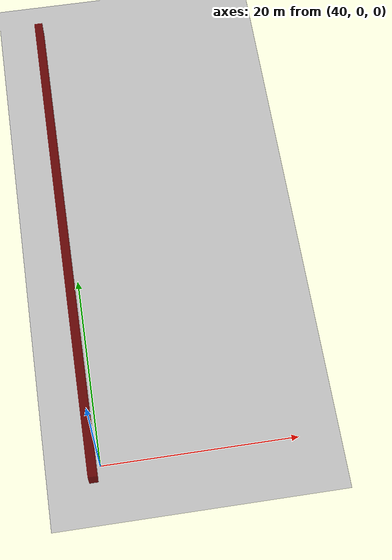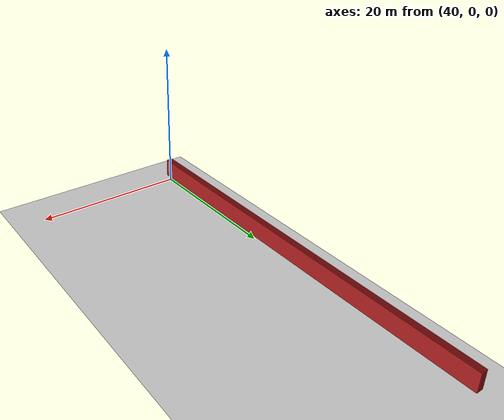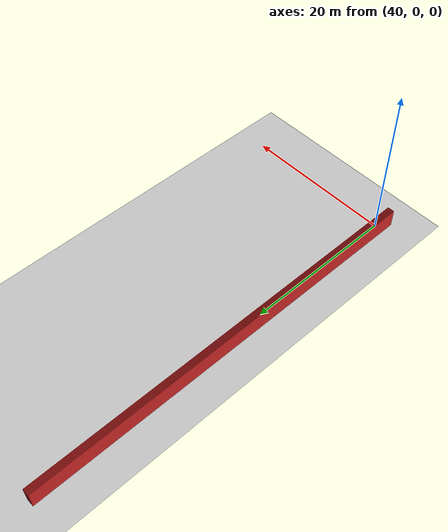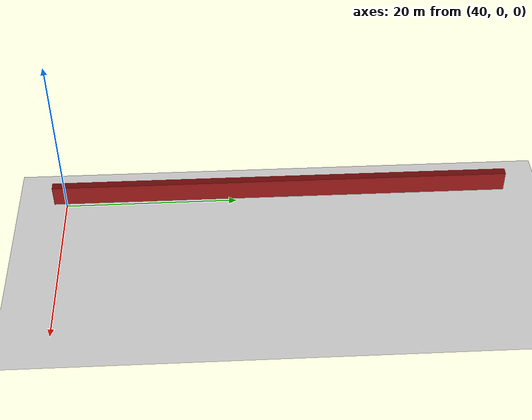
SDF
<sdf version="1.4">
 <world name="1_wall">
  <model name="ground_plane">
   <static>1</static>
   <link name="link">
    <collision name="collision">
     <geometry><plane><normal>0 0 1</normal><size>1000 1000</size></plane></geometry>
     <surface><friction><ode><mu>100</mu><mu2>50</mu2></ode></friction></surface>
    </collision>
    <visual name="visual">
     <cast_shadows>0</cast_shadows>
     <geometry><plane><normal>0 0 1</normal><size>10000 10000</size></plane></geometry>
     <material>
      <script><uri>file://media/materials/scripts/gazebo.material</uri><name>Gazebo/Grey</name></script>
     </material>
    </visual>
    <velocity_decay><linear>0</linear><angular>0</angular></velocity_decay>
   </link>
  </model>
  <model name="Wall_805">
   <static>1</static>
   <link name="Wall_805">
    <collision name="Wall_Collision_805">
     <geometry><box><size>53.65 0.05 2.5</size></box></geometry>
     <pose>0 0 1.25 0 -0 0</pose>
    </collision>
    <visual name="Wall_Visual_805">
     <pose>0 0 1.25 0 -0 0</pose>
     <geometry><box><size>53.65 0.05 2.5</size></box></geometry>
     <material>
      <script><uri>file://media/materials/scripts/gazebo.material</uri><name>Gazebo/Red</name></script>
     </material>
    </visual>
    <velocity_decay><linear>0</linear><angular>0</angular></velocity_decay>
    <pose>38.75 25.3 0 0 0 1.5707963267948966</pose>
   </link>
  </model>
  <model name="Wall_806">
   <static>1</static>
   <link name="Wall_806">
    <collision name="Wall_Collision_806">
     <geometry><box><size>53.65 0.05 2.5</size></box></geometry>
     <pose>0 0 1.25 0 -0 0</pose>
    </collision>
    <visual name="Wall_Visual_806">
     <pose>0 0 1.25 0 -0 0</pose>
     <geometry><box><size>53.65 0.05 2.5</size></box></geometry>
     <material>
      <script><uri>file://media/materials/scripts/gazebo.material</uri><name>Gazebo/Red</name></script>
     </material>
    </visual>
    <velocity_decay><linear>0</linear><angular>0</angular></velocity_decay>
    <pose>38.8 25.3 0 0 0 1.5707963267948966</pose>
   </link>
  </model>
  <model name="Wall_807">
   <static>1</static>
   <link name="Wall_807">
    <collision name="Wall_Collision_807">
     <geometry><box><size>53.65 0.05 2.5</size></box></geometry>
     <pose>0 0 1.25 0 -0 0</pose>
    </collision>
    <visual name="Wall_Visual_807">
     <pose>0 0 1.25 0 -0 0</pose>
     <geometry><box><size>53.65 0.05 2.5</size></box></geometry>
     <material>
      <script><uri>file://media/materials/scripts/gazebo.material</uri><name>Gazebo/Red</name></script>
     </material>
    </visual>
    <velocity_decay><linear>0</linear><angular>0</angular></velocity_decay>
    <pose>38.85 25.3 0 0 0 1.5707963267948966</pose>
   </link>
  </model>
  <model name="Wall_808">
   <static>1</static>
   <link name="Wall_808">
    <collision name="Wall_Collision_808">
     <geometry><box><size>53.65 0.05 2.5</size></box></geometry>
     <pose>0 0 1.25 0 -0 0</pose>
    </collision>
    <visual name="Wall_Visual_808">
     <pose>0 0 1.25 0 -0 0</pose>
     <geometry><box><size>53.65 0.05 2.5</size></box></geometry>
     <material>
      <script><uri>file://media/materials/scripts/gazebo.material</uri><name>Gazebo/Red</name></script>
     </material>
    </visual>
    <velocity_decay><linear>0</linear><angular>0</angular></velocity_decay>
    <pose>38.9 25.3 0 0 0 1.5707963267948966</pose>
   </link>
  </model>
  <model name="Wall_809">
   <static>1</static>
   <link name="Wall_809">
    <collision name="Wall_Collision_809">
     <geometry><box><size>53.65 0.05 2.5</size></box></geometry>
     <pose>0 0 1.25 0 -0 0</pose>
    </collision>
    <visual name="Wall_Visual_809">
     <pose>0 0 1.25 0 -0 0</pose>
     <geometry><box><size>53.65 0.05 2.5</size></box></geometry>
     <material>
      <script><uri>file://media/materials/scripts/gazebo.material</uri><name>Gazebo/Red</name></script>
     </material>
    </visual>
    <velocity_decay><linear>0</linear><angular>0</angular></velocity_decay>
    <pose>38.95 25.3 0 0 0 1.5707963267948966</pose>
   </link>
  </model>
  <model name="Wall_810">
   <static>1</static>
   <link name="Wall_810">
    <collision name="Wall_Collision_810">
     <geometry><box><size>53.65 0.05 2.5</size></box></geometry>
     <pose>0 0 1.25 0 -0 0</pose>
    </collision>
    <visual name="Wall_Visual_810">
     <pose>0 0 1.25 0 -0 0</pose>
     <geometry><box><size>53.65 0.05 2.5</size></box></geometry>
     <material>
      <script><uri>file://media/materials/scripts/gazebo.material</uri><name>Gazebo/Red</name></script>
     </material>
    </visual>
    <velocity_decay><linear>0</linear><angular>0</angular></velocity_decay>
    <pose>39.0 25.3 0 0 0 1.5707963267948966</pose>
   </link>
  </model>
  <model name="Wall_811">
   <static>1</static>
   <link name="Wall_811">
    <collision name="Wall_Collision_811">
     <geometry><box><size>53.65 0.05 2.5</size></box></geometry>
     <pose>0 0 1.25 0 -0 0</pose>
    </collision>
    <visual name="Wall_Visual_811">
     <pose>0 0 1.25 0 -0 0</pose>
     <geometry><box><size>53.65 0.05 2.5</size></box></geometry>
     <material>
      <script><uri>file://media/materials/scripts/gazebo.material</uri><name>Gazebo/Red</name></script>
     </material>
    </visual>
    <velocity_decay><linear>0</linear><angular>0</angular></velocity_decay>
    <pose>39.05 25.3 0 0 0 1.5707963267948966</pose>
   </link>
  </model>
  <model name="Wall_812">
   <static>1</static>
   <link name="Wall_812">
    <collision name="Wall_Collision_812">
     <geometry><box><size>53.65 0.05 2.5</size></box></geometry>
     <pose>0 0 1.25 0 -0 0</pose>
    </collision>
    <visual name="Wall_Visual_812">
     <pose>0 0 1.25 0 -0 0</pose>
     <geometry><box><size>53.65 0.05 2.5</size></box></geometry>
     <material>
      <script><uri>file://media/materials/scripts/gazebo.material</uri><name>Gazebo/Red</name></script>
     </material>
    </visual>
    <velocity_decay><linear>0</linear><angular>0</angular></velocity_decay>
    <pose>39.1 25.3 0 0 0 1.5707963267948966</pose>
   </link>
  </model>
  <model name="Wall_813">
   <static>1</static>
   <link name="Wall_813">
    <collision name="Wall_Collision_813">
     <geometry><box><size>53.65 0.05 2.5</size></box></geometry>
     <pose>0 0 1.25 0 -0 0</pose>
    </collision>
    <visual name="Wall_Visual_813">
     <pose>0 0 1.25 0 -0 0</pose>
     <geometry><box><size>53.65 0.05 2.5</size></box></geometry>
     <material>
      <script><uri>file://media/materials/scripts/gazebo.material</uri><name>Gazebo/Red</name></script>
     </material>
    </visual>
    <velocity_decay><linear>0</linear><angular>0</angular></velocity_decay>
    <pose>39.15 25.3 0 0 0 1.5707963267948966</pose>
   </link>
  </model>
  <model name="Wall_814">
   <static>1</static>
   <link name="Wall_814">
    <collision name="Wall_Collision_814">
     <geometry><box><size>53.65 0.05 2.5</size></box></geometry>
     <pose>0 0 1.25 0 -0 0</pose>
    </collision>
    <visual name="Wall_Visual_814">
     <pose>0 0 1.25 0 -0 0</pose>
     <geometry><box><size>53.65 0.05 2.5</size></box></geometry>
     <material>
      <script><uri>file://media/materials/scripts/gazebo.material</uri><name>Gazebo/Red</name></script>
     </material>
    </visual>
    <velocity_decay><linear>0</linear><angular>0</angular></velocity_decay>
    <pose>39.2 25.3 0 0 0 1.5707963267948966</pose>
   </link>
  </model>
  <model name="Wall_815">
   <static>1</static>
   <link name="Wall_815">
    <collision name="Wall_Collision_815">
     <geometry><box><size>53.65 0.05 2.5</size></box></geometry>
     <pose>0 0 1.25 0 -0 0</pose>
    </collision>
    <visual name="Wall_Visual_815">
     <pose>0 0 1.25 0 -0 0</pose>
     <geometry><box><size>53.65 0.05 2.5</size></box></geometry>
     <material>
      <script><uri>file://media/materials/scripts/gazebo.material</uri><name>Gazebo/Red</name></script>
     </material>
    </visual>
    <velocity_decay><linear>0</linear><angular>0</angular></velocity_decay>
    <pose>39.25 25.3 0 0 0 1.5707963267948966</pose>
   </link>
  </model>
  <model name="Wall_816">
   <static>1</static>
   <link name="Wall_816">
    <collision name="Wall_Collision_816">
     <geometry><box><size>53.65 0.05 2.5</size></box></geometry>
     <pose>0 0 1.25 0 -0 0</pose>
    </collision>
    <visual name="Wall_Visual_816">
     <pose>0 0 1.25 0 -0 0</pose>
     <geometry><box><size>53.65 0.05 2.5</size></box></geometry>
     <material>
      <script><uri>file://media/materials/scripts/gazebo.material</uri><name>Gazebo/Red</name></script>
     </material>
    </visual>
    <velocity_decay><linear>0</linear><angular>0</angular></velocity_decay>
    <pose>39.3 25.3 0 0 0 1.5707963267948966</pose>
   </link>
  </model>
  <model name="Wall_817">
   <static>1</static>
   <link name="Wall_817">
    <collision name="Wall_Collision_817">
     <geometry><box><size>53.65 0.05 2.5</size></box></geometry>
     <pose>0 0 1.25 0 -0 0</pose>
    </collision>
    <visual name="Wall_Visual_817">
     <pose>0 0 1.25 0 -0 0</pose>
     <geometry><box><size>53.65 0.05 2.5</size></box></geometry>
     <material>
      <script><uri>file://media/materials/scripts/gazebo.material</uri><name>Gazebo/Red</name></script>
     </material>
    </visual>
    <velocity_decay><linear>0</linear><angular>0</angular></velocity_decay>
    <pose>39.35 25.3 0 0 0 1.5707963267948966</pose>
   </link>
  </model>
  <model name="Wall_818">
   <static>1</static>
   <link name="Wall_818">
    <collision name="Wall_Collision_818">
     <geometry><box><size>53.65 0.05 2.5</size></box></geometry>
     <pose>0 0 1.25 0 -0 0</pose>
    </collision>
    <visual name="Wall_Visual_818">
     <pose>0 0 1.25 0 -0 0</pose>
     <geometry><box><size>53.65 0.05 2.5</size></box></geometry>
     <material>
      <script><uri>file://media/materials/scripts/gazebo.material</uri><name>Gazebo/Red</name></script>
     </material>
    </visual>
    <velocity_decay><linear>0</linear><angular>0</angular></velocity_decay>
    <pose>39.4 25.3 0 0 0 1.5707963267948966</pose>
   </link>
  </model>
  <model name="Wall_819">
   <static>1</static>
   <link name="Wall_819">
    <collision name="Wall_Collision_819">
     <geometry><box><size>53.65 0.05 2.5</size></box></geometry>
     <pose>0 0 1.25 0 -0 0</pose>
    </collision>
    <visual name="Wall_Visual_819">
     <pose>0 0 1.25 0 -0 0</pose>
     <geometry><box><size>53.65 0.05 2.5</size></box></geometry>
     <material>
      <script><uri>file://media/materials/scripts/gazebo.material</uri><name>Gazebo/Red</name></script>
     </material>
    </visual>
    <velocity_decay><linear>0</linear><angular>0</angular></velocity_decay>
    <pose>39.45 25.3 0 0 0 1.5707963267948966</pose>
   </link>
  </model>
  <model name="Wall_820">
   <static>1</static>
   <link name="Wall_820">
    <collision name="Wall_Collision_820">
     <geometry><box><size>53.65 0.05 2.5</size></box></geometry>
     <pose>0 0 1.25 0 -0 0</pose>
    </collision>
    <visual name="Wall_Visual_820">
     <pose>0 0 1.25 0 -0 0</pose>
     <geometry><box><size>53.65 0.05 2.5</size></box></geometry>
     <material>
      <script><uri>file://media/materials/scripts/gazebo.material</uri><name>Gazebo/Red</name></script>
     </material>
    </visual>
    <velocity_decay><linear>0</linear><angular>0</angular></velocity_decay>
    <pose>39.5 25.3 0 0 0 1.5707963267948966</pose>
   </link>
  </model>
  <model name="Wall_821">
   <static>1</static>
   <link name="Wall_821">
    <collision name="Wall_Collision_821">
     <geometry><box><size>53.65 0.05 2.5</size></box></geometry>
     <pose>0 0 1.25 0 -0 0</pose>
    </collision>
    <visual name="Wall_Visual_821">
     <pose>0 0 1.25 0 -0 0</pose>
     <geometry><box><size>53.65 0.05 2.5</size></box></geometry>
     <material>
      <script><uri>file://media/materials/scripts/gazebo.material</uri><name>Gazebo/Red</name></script>
     </material>
    </visual>
    <velocity_decay><linear>0</linear><angular>0</angular></velocity_decay>
    <pose>39.55 25.3 0 0 0 1.5707963267948966</pose>
   </link>
  </model>
  <model name="Wall_822">
   <static>1</static>
   <link name="Wall_822">
    <collision name="Wall_Collision_822">
     <geometry><box><size>53.65 0.05 2.5</size></box></geometry>
     <pose>0 0 1.25 0 -0 0</pose>
    </collision>
    <visual name="Wall_Visual_822">
     <pose>0 0 1.25 0 -0 0</pose>
     <geometry><box><size>53.65 0.05 2.5</size></box></geometry>
     <material>
      <script><uri>file://media/materials/scripts/gazebo.material</uri><name>Gazebo/Red</name></script>
     </material>
    </visual>
    <velocity_decay><linear>0</linear><angular>0</angular></velocity_decay>
    <pose>39.6 25.3 0 0 0 1.5707963267948966</pose>
   </link>
  </model>
 </world>
</sdf>
